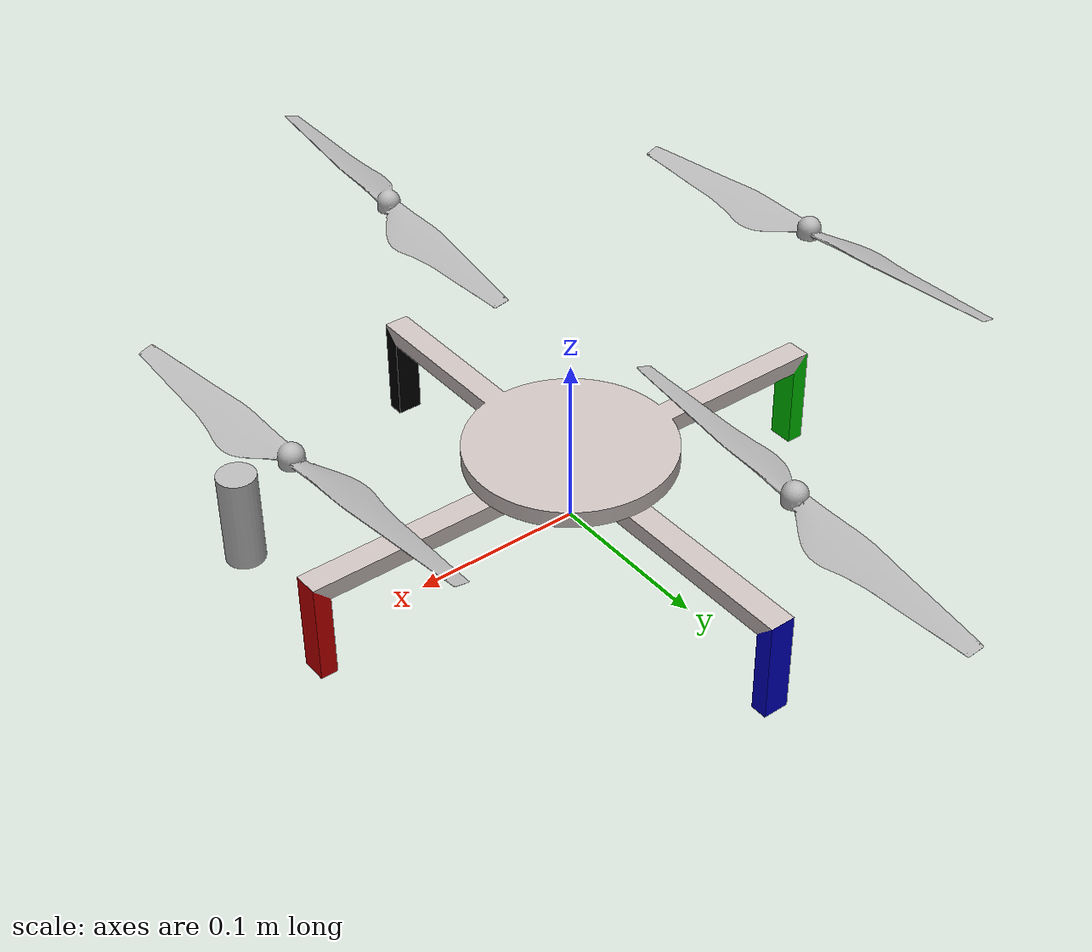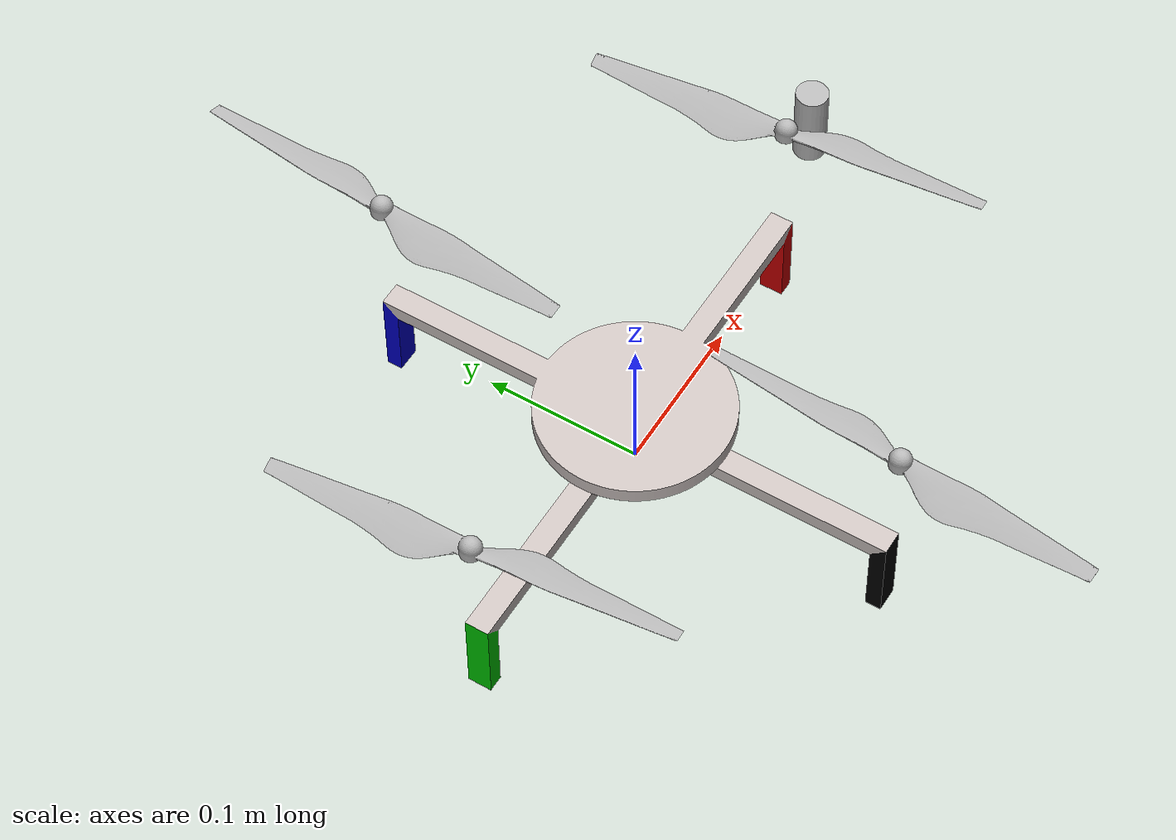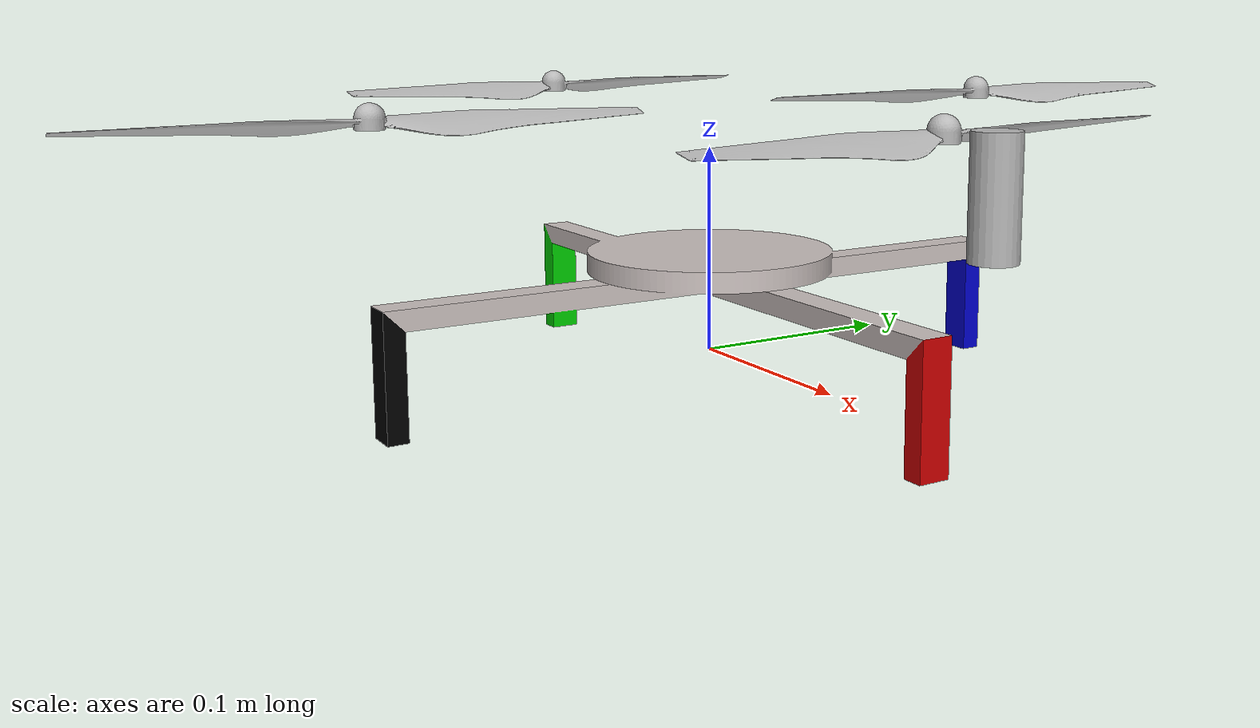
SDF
<sdf version='1.6'>
  <model name='quad01'>
    <pose frame="">0 0 0 0 0 0</pose>
    <link name="quad01/base_link"></link>

    <joint name="quad01/led_joint" type="fixed">
      <parent>quad01/base_link</parent>
      <child>led_link</child>
    </joint>

    <link name="led_link">
    <pose>0.2 0 0.1 0 0 0</pose>
      <visual name="led">
        <geometry>
          <cylinder>
            <length>0.05</length>
            <radius>0.01</radius>
          </cylinder>
        </geometry>
      </visual>
      <material>
        <ambient>0 0 0 1</ambient>
        <diffuse>0 0 0 1</diffuse>
        <specular>0 0 0 1</specular>
        <emissive>0 1 0 1</emissive>
      </material>
    </link>

    <joint name="quad01/base_joint" type="fixed">
      <parent>quad01/base_link</parent>
      <child>quad01/base_link_inertia</child>
    </joint>

    <link name="quad01/base_link_inertia">
      <inertial>
        <mass>0.68</mass>  <!-- [kg] -->
        <inertia>
          <ixx>0.007</ixx>
          <ixy>0</ixy>
          <ixz>0</ixz>
          <iyy>0.007</iyy>
          <iyz>0</iyz>
          <izz>0.012</izz>
        </inertia>
      </inertial>
      <visual name="base_link_visual">
        <pose>-0.17 -0.17 0.05 -1.57 0 0 </pose>
        <geometry>
          <mesh>
            <uri>model://rotors_description/meshes/bird01.dae</uri>
            <scale>0.001 0.001 0.001</scale>
          </mesh>
        </geometry>
      </visual>

      <collision name="baselink_col">
        <geometry>
          <box>
            <size>0.1 0.1 0.12</size>
          </box>
        </geometry>
      </collision>
    </link>

    <!-- attach multirotor_base_plugin to the base_link -->

      <plugin filename="librotors_gazebo_multirotor_base_plugin.so" name="multirotor_base_plugin">
        <linkName>quad01/base_link</linkName>
        <rotorVelocitySlowdownSim>10</rotorVelocitySlowdownSim>
      </plugin>

                            <!--Rotor joint and link-->
    <joint name="quad01/joint_rotor_0" type="velocity">
    <pose>0.17 0 0.12 0 0 0</pose>
      <parent>quad01/base_link</parent>
      <child>quad01/link_rotor_0</child>
    </joint>
    <link name="quad01/link_rotor_0">
      <inertial>
        <mass>0.009</mass>  <!-- [kg] -->
        <inertia>
          <ixx>0.000001</ixx>
          <ixy>0</ixy>
          <ixz>0</ixz>
          <iyy>0.00007</iyy>
          <iyz>0</iyz>
          <izz>0.00007</izz>
        </inertia>
      </inertial>
      <visual name="rotor_0_visual">
        <pose>0.17 0 0.12 0 0 0</pose>
        <geometry>
          <mesh>
            <uri>model://rotors_description/meshes/propeller_cw.dae</uri>
            <scale>0.1 0.1 0.1</scale>
          </mesh><!-- The propeller meshes have a radius of 1m -->
        </geometry>
      </visual>
      <collision name="rotor0_col">
        <geometry>
          <cylinder>
            <length>0.005</length>
            <radius>0.1</radius>
          </cylinder>
        </geometry>
      </collision>
    </link>
    <plugin name="quad01_motor_model_0" filename="librotors_gazebo_motor_model.so">
      <jointName>quad01/joint_rotor_0</jointName>
      <linkName>quad01/link_rotor_0</linkName>
      <turningDirection>cw</turningDirection>
      <timeConstantUp>0.0125</timeConstantUp>
      <timeConstantDown>0.025</timeConstantDown>
      <maxRotVelocity>838</maxRotVelocity>
      <motorConstant>8.54858e-06</motorConstant>
      <momentConstant>0.016</momentConstant>
      <commandSubTopic>gazebo/command/motor_speed</commandSubTopic>
      <motorNumber>0</motorNumber>
      <rotorDragCoefficient>8.06428e-05</rotorDragCoefficient>
      <rollingMomentCoefficient>0.000001</rollingMomentCoefficient>
      <motorSpeedPubTopic>motor_speed/0</motorSpeedPubTopic>
      <rotorVelocitySlowdownSim>10</rotorVelocitySlowdownSim>
    </plugin>

    <joint name="quad01/joint_rotor_1" type="velocity">
    <pose>0 0.17 0.12 0 0 0</pose>
      <parent>quad01/base_link</parent>
      <child>quad01/link_rotor_1</child>
    </joint>
    <link name="quad01/link_rotor_1">
      <inertial>
        <mass>0.009</mass>  <!-- [kg] -->
        <inertia>
          <ixx>0.000001</ixx>
          <ixy>0</ixy>
          <ixz>0</ixz>
          <iyy>0.00007</iyy>
          <iyz>0</iyz>
          <izz>0.00007</izz>
        </inertia>
      </inertial>
      <visual name="rotor_1_visual">
        <pose>0 0.17 0.12 0 0 0</pose>
        <geometry>
          <mesh>
            <uri>model://rotors_description/meshes/propeller_ccw.dae</uri>
            <scale>0.1 0.1 0.1</scale>
          </mesh><!-- The propeller meshes have a radius of 1m -->
        </geometry>
      </visual>
      <collision name="rotor1_col">
        <geometry>
          <cylinder>
            <length>0.005</length>
            <radius>0.1</radius>
          </cylinder>
        </geometry>
      </collision>
    </link>
    <plugin name="quad01_motor_model_1" filename="librotors_gazebo_motor_model.so">
      <jointName>quad01/joint_rotor_1</jointName>
      <linkName>quad01/link_rotor_1</linkName>
      <turningDirection>ccw</turningDirection>
      <timeConstantUp>0.0125</timeConstantUp>
      <timeConstantDown>0.025</timeConstantDown>
      <maxRotVelocity>838</maxRotVelocity>
      <motorConstant>8.54858e-06</motorConstant>
      <momentConstant>0.016</momentConstant>
      <commandSubTopic>gazebo/command/motor_speed</commandSubTopic>
      <motorNumber>1</motorNumber>
      <rotorDragCoefficient>8.06428e-05</rotorDragCoefficient>
      <rollingMomentCoefficient>0.000001</rollingMomentCoefficient>
      <motorSpeedPubTopic>motor_speed/1</motorSpeedPubTopic>
      <rotorVelocitySlowdownSim>10</rotorVelocitySlowdownSim>
    </plugin>

    <joint name="quad01/joint_rotor_2" type="velocity">
    <pose>-0.17 0 0.12 0 0 0</pose>
      <parent>quad01/base_link</parent>
      <child>quad01/link_rotor_2</child>
    </joint>
    <link name="quad01/link_rotor_2">
      <inertial>
        <mass>0.009</mass>  <!-- [kg] -->
        <inertia>
          <ixx>0.000001</ixx>
          <ixy>0</ixy>
          <ixz>0</ixz>
          <iyy>0.00007</iyy>
          <iyz>0</iyz>
          <izz>0.00007</izz>
        </inertia>
      </inertial>
      <visual name="rotor_2_visual">
        <pose>-0.17 0 0.12 0 0 0</pose>
        <geometry>
          <mesh>
            <uri>model://rotors_description/meshes/propeller_cw.dae</uri>
            <scale>0.1 0.1 0.1</scale>
          </mesh><!-- The propeller meshes have a radius of 1m -->
        </geometry>
      </visual>
      <collision name="rotor2_col">
        <geometry>
          <cylinder>
            <length>0.005</length>
            <radius>0.1</radius>
          </cylinder>
        </geometry>
      </collision>
    </link>
    <plugin name="quad01_motor_model_2" filename="librotors_gazebo_motor_model.so">
      <jointName>quad01/joint_rotor_2</jointName>
      <linkName>quad01/link_rotor_2</linkName>
      <turningDirection>cw</turningDirection>
      <timeConstantUp>0.0125</timeConstantUp>
      <timeConstantDown>0.025</timeConstantDown>
      <maxRotVelocity>838</maxRotVelocity>
      <motorConstant>8.54858e-06</motorConstant>
      <momentConstant>0.016</momentConstant>
      <commandSubTopic>gazebo/command/motor_speed</commandSubTopic>
      <motorNumber>2</motorNumber>
      <rotorDragCoefficient>8.06428e-05</rotorDragCoefficient>
      <rollingMomentCoefficient>0.000001</rollingMomentCoefficient>
      <motorSpeedPubTopic>motor_speed/2</motorSpeedPubTopic>
      <rotorVelocitySlowdownSim>10</rotorVelocitySlowdownSim>
    </plugin>

    <joint name="quad01/joint_rotor_3" type="velocity">
      <pose>0 -0.17 0.12 0 0 0</pose>
      <parent>quad01/base_link</parent>
      <child>quad01/link_rotor_3</child>
    </joint>
    <link name="quad01/link_rotor_3">
      <inertial>
        <mass>0.009</mass>  <!-- [kg] -->
        <inertia>
          <ixx>0.000001</ixx>
          <ixy>0</ixy>
          <ixz>0</ixz>
          <iyy>0.00007</iyy>
          <iyz>0</iyz>
          <izz>0.00007</izz>
        </inertia>
      </inertial>
      <visual name="rotor_3_visual">
        <pose>0 -0.17 0.12 0 0 0</pose>
        <geometry>
          <mesh>
            <uri>model://rotors_description/meshes/propeller_ccw.dae</uri>
            <scale>0.1 0.1 0.1</scale>
          </mesh><!-- The propeller meshes have a radius of 1m -->
        </geometry>
      </visual>
      <collision name="rotor3_col">
        <geometry>
          <cylinder>
            <length>0.005</length>
            <radius>0.1</radius>
          </cylinder>
        </geometry>
      </collision>
    </link>
    <plugin name="quad01_motor_model_3" filename="librotors_gazebo_motor_model.so">
      <jointName>quad01/joint_rotor_3</jointName>
      <linkName>quad01/link_rotor_3</linkName>
      <turningDirection>ccw</turningDirection>
      <timeConstantUp>0.0125</timeConstantUp>
      <timeConstantDown>0.025</timeConstantDown>
      <maxRotVelocity>838</maxRotVelocity>
      <motorConstant>8.54858e-06</motorConstant>
      <momentConstant>0.016</momentConstant>
      <commandSubTopic>gazebo/command/motor_speed</commandSubTopic>
      <motorNumber>3</motorNumber>
      <rotorDragCoefficient>8.06428e-05</rotorDragCoefficient>
      <rollingMomentCoefficient>0.000001</rollingMomentCoefficient>
      <motorSpeedPubTopic>motor_speed/3</motorSpeedPubTopic>
      <rotorVelocitySlowdownSim>10</rotorVelocitySlowdownSim>
    </plugin>

  </model>
</sdf>
